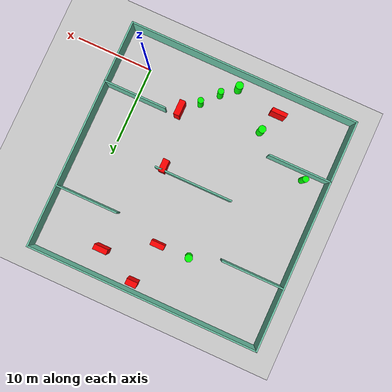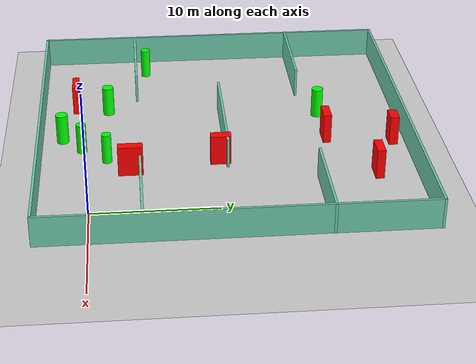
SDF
<sdf version="1.7">
 <world name="default">
  <light name="sun" type="directional">
   <pose>0 0 10 0 -0 0</pose>
   <diffuse>0.8 0.8 0.8 1</diffuse>
   <specular>0.2 0.2 0.2 1</specular>
   <attenuation>
    <range>1000</range>
    <constant>0.9</constant>
    <linear>0.01</linear>
    <quadratic>0.001</quadratic>
   </attenuation>
   <direction>-0.5 0.1 -0.9</direction>
   <spot><inner_angle>0</inner_angle><outer_angle>0</outer_angle><falloff>0</falloff></spot>
  </light>
  <model name="ground_plane">
   <static>1</static>
   <link name="link">
    <collision name="collision">
     <geometry><plane><normal>0 0 1</normal><size>100 100</size></plane></geometry>
     <surface>
      <contact><collide_bitmask>65535</collide_bitmask></contact>
      <friction><ode><mu>100</mu><mu2>50</mu2></ode></friction>
     </surface>
    </collision>
    <visual name="visual">
     <cast_shadows>0</cast_shadows>
     <geometry><plane><normal>0 0 1</normal><size>100 100</size></plane></geometry>
     <material>
      <script><uri>file://media/materials/scripts/gazebo.material</uri><name>Gazebo/Grey</name></script>
     </material>
    </visual>
   </link>
  </model>
  <gravity>0 0 -9.8</gravity>
  <magnetic_field>6e-06 2.3e-05 -4.2e-05</magnetic_field>
  <atmosphere type="adiabatic"/>
  <physics type="ode">
   <max_step_size>0.001</max_step_size>
   <real_time_factor>1</real_time_factor>
   <real_time_update_rate>1000</real_time_update_rate>
  </physics>
  <scene><ambient>0.4 0.4 0.4 1</ambient><background>0.7 0.7 0.7 1</background><shadows>1</shadows></scene>
  <spherical_coordinates>
   <surface_model>EARTH_WGS84</surface_model>
   <latitude_deg>0</latitude_deg>
   <longitude_deg>0</longitude_deg>
   <elevation>0</elevation>
   <heading_deg>0</heading_deg>
  </spherical_coordinates>
  <model name="my_base_walls">
   <link name="Wall_10">
    <collision name="Wall_10_Collision">
     <geometry><box><size>8.2 0.2 2.5</size></box></geometry>
     <pose>0 0 1.25 0 -0 0</pose>
    </collision>
    <visual name="Wall_10_Visual">
     <pose>0 0 1.25 0 -0 0</pose>
     <geometry><box><size>8.2 0.2 2.5</size></box></geometry>
     <material>
      <script><uri>file://media/materials/scripts/gazebo.material</uri><name>Gazebo/Grey</name></script>
      <ambient>0.435294 0.796078 0.67451 1</ambient>
     </material>
     <meta><layer>0</layer></meta>
    </visual>
    <pose>-11 -7 0 0 -0 0</pose>
   </link>
   <link name="Wall_12">
    <collision name="Wall_12_Collision">
     <geometry><box><size>8.2 0.2 2.5</size></box></geometry>
     <pose>0 0 1.25 0 -0 0</pose>
    </collision>
    <visual name="Wall_12_Visual">
     <pose>0 0 1.25 0 -0 0</pose>
     <geometry><box><size>8.2 0.2 2.5</size></box></geometry>
     <material>
      <script><uri>file://media/materials/scripts/gazebo.material</uri><name>Gazebo/Grey</name></script>
      <ambient>0.435294 0.796078 0.67451 1</ambient>
     </material>
     <meta><layer>0</layer></meta>
    </visual>
    <pose>-11 7 0 0 -0 0</pose>
   </link>
   <link name="Wall_14">
    <collision name="Wall_14_Collision">
     <geometry><box><size>8.2 0.2 2.5</size></box></geometry>
     <pose>0 0 1.25 0 -0 0</pose>
    </collision>
    <visual name="Wall_14_Visual">
     <pose>0 0 1.25 0 -0 0</pose>
     <geometry><box><size>8.2 0.2 2.5</size></box></geometry>
     <material>
      <script><uri>file://media/materials/scripts/gazebo.material</uri><name>Gazebo/Grey</name></script>
      <ambient>0.435294 0.796078 0.67451 1</ambient>
     </material>
     <meta><layer>0</layer></meta>
    </visual>
    <pose>11 7 0 0 -0 3.14159</pose>
   </link>
   <link name="Wall_16">
    <collision name="Wall_16_Collision">
     <geometry><box><size>10.2 0.2 2.5</size></box></geometry>
     <pose>0 0 1.25 0 -0 0</pose>
    </collision>
    <visual name="Wall_16_Visual">
     <pose>0 0 1.25 0 -0 0</pose>
     <geometry><box><size>10.2 0.2 2.5</size></box></geometry>
     <material>
      <script><uri>file://media/materials/scripts/gazebo.material</uri><name>Gazebo/Grey</name></script>
      <ambient>0.435294 0.796078 0.67451 1</ambient>
     </material>
     <meta><layer>0</layer></meta>
    </visual>
    <pose>0 0 0 0 -0 3.14159</pose>
   </link>
   <link name="Wall_2">
    <collision name="Wall_2_Collision">
     <geometry><box><size>30.2 0.2 2.5</size></box></geometry>
     <pose>0 0 1.25 0 -0 0</pose>
    </collision>
    <visual name="Wall_2_Visual">
     <pose>0 0 1.25 0 -0 0</pose>
     <geometry><box><size>30.2 0.2 2.5</size></box></geometry>
     <material>
      <script><uri>file://media/materials/scripts/gazebo.material</uri><name>Gazebo/Grey</name></script>
      <ambient>0.435294 0.796078 0.67451 1</ambient>
     </material>
     <meta><layer>0</layer></meta>
    </visual>
    <pose>0 -15 0 0 -0 3.14159</pose>
   </link>
   <link name="Wall_3">
    <collision name="Wall_3_Collision">
     <geometry><box><size>30.2 0.2 2.5</size></box></geometry>
     <pose>0 0 1.25 0 -0 0</pose>
    </collision>
    <visual name="Wall_3_Visual">
     <pose>0 0 1.25 0 -0 0</pose>
     <geometry><box><size>30.2 0.2 2.5</size></box></geometry>
     <material>
      <script><uri>file://media/materials/scripts/gazebo.material</uri><name>Gazebo/Grey</name></script>
      <ambient>0.435294 0.796078 0.67451 1</ambient>
     </material>
     <meta><layer>0</layer></meta>
    </visual>
    <pose>-15 0 0 0 -0 1.5708</pose>
   </link>
   <link name="Wall_4">
    <collision name="Wall_4_Collision">
     <geometry><box><size>30.2 0.2 2.5</size></box></geometry>
     <pose>0 0 1.25 0 -0 0</pose>
    </collision>
    <visual name="Wall_4_Visual">
     <pose>0 0 1.25 0 -0 0</pose>
     <geometry><box><size>30.2 0.2 2.5</size></box></geometry>
     <material>
      <script><uri>file://media/materials/scripts/gazebo.material</uri><name>Gazebo/Grey</name></script>
      <ambient>0.435294 0.796078 0.67451 1</ambient>
     </material>
     <meta><layer>0</layer></meta>
    </visual>
    <pose>0 15 0 0 -0 0</pose>
   </link>
   <link name="Wall_6">
    <collision name="Wall_6_Collision">
     <geometry><box><size>30.2 0.2 2.5</size></box></geometry>
     <pose>0 0 1.25 0 -0 0</pose>
    </collision>
    <visual name="Wall_6_Visual">
     <pose>0 0 1.25 0 -0 0</pose>
     <geometry><box><size>30.2 0.2 2.5</size></box></geometry>
     <material>
      <script><uri>file://media/materials/scripts/gazebo.material</uri><name>Gazebo/Grey</name></script>
      <ambient>0.435294 0.796078 0.67451 1</ambient>
     </material>
     <meta><layer>0</layer></meta>
    </visual>
    <pose>15 0 0 0 -0 1.5708</pose>
   </link>
   <link name="Wall_8">
    <collision name="Wall_8_Collision">
     <geometry><box><size>8.2 0.2 2.5</size></box></geometry>
     <pose>0 0 1.25 0 -0 0</pose>
    </collision>
    <visual name="Wall_8_Visual">
     <pose>0 0 1.25 0 -0 0</pose>
     <geometry><box><size>8.2 0.2 2.5</size></box></geometry>
     <material>
      <script><uri>file://media/materials/scripts/gazebo.material</uri><name>Gazebo/Grey</name></script>
      <ambient>0.435294 0.796078 0.67451 1</ambient>
     </material>
     <meta><layer>0</layer></meta>
    </visual>
    <pose>11 -7 0 0 -0 3.14159</pose>
   </link>
   <static>1</static>
   <pose>-11 11 0 0 -0 0</pose>
  </model>
  <model name="cylinder1">
   <static>1</static>
   <link name="link">
    <inertial>
     <mass>1</mass>
     <inertia><ixx>0.5</ixx><ixy>0</ixy><ixz>0</ixz><iyy>0.5</iyy><iyz>0</iyz><izz>1</izz></inertia>
    </inertial>
    <collision name="collision">
     <geometry><cylinder><radius>0.4920406954610144</radius><length>2.5</length></cylinder></geometry>
    </collision>
    <visual name="visual">
     <geometry><cylinder><radius>0.4920406954610144</radius><length>2.5</length></cylinder></geometry>
     <material>
      <ambient>0 1 0 1</ambient>
      <diffuse>0 1 0 1</diffuse>
      <specular>0.1 0.1 0.1 1</specular>
      <emissive>0 0 0 0</emissive>
     </material>
    </visual>
   </link>
   <pose>-11.183086590891907 -2.2486082366584292 1.25 0 0 0</pose>
  </model>
  <model name="cylinder2">
   <static>1</static>
   <link name="link">
    <inertial>
     <mass>1</mass>
     <inertia><ixx>0.5</ixx><ixy>0</ixy><ixz>0</ixz><iyy>0.5</iyy><iyz>0</iyz><izz>1</izz></inertia>
    </inertial>
    <collision name="collision">
     <geometry><cylinder><radius>0.47694194335690765</radius><length>2.5</length></cylinder></geometry>
    </collision>
    <visual name="visual">
     <geometry><cylinder><radius>0.47694194335690765</radius><length>2.5</length></cylinder></geometry>
     <material>
      <ambient>0 1 0 1</ambient>
      <diffuse>0 1 0 1</diffuse>
      <specular>0.1 0.1 0.1 1</specular>
      <emissive>0 0 0 0</emissive>
     </material>
    </visual>
   </link>
   <pose>-15.87401078196036 1.5246909770335932 1.25 0 0 0</pose>
  </model>
  <model name="cylinder3">
   <static>1</static>
   <link name="link">
    <inertial>
     <mass>1</mass>
     <inertia><ixx>0.5</ixx><ixy>0</ixy><ixz>0</ixz><iyy>0.5</iyy><iyz>0</iyz><izz>1</izz></inertia>
    </inertial>
    <collision name="collision">
     <geometry><cylinder><radius>0.387052619647152</radius><length>2.5</length></cylinder></geometry>
    </collision>
    <visual name="visual">
     <geometry><cylinder><radius>0.387052619647152</radius><length>2.5</length></cylinder></geometry>
     <material>
      <ambient>0 1 0 1</ambient>
      <diffuse>0 1 0 1</diffuse>
      <specular>0.1 0.1 0.1 1</specular>
      <emissive>0 0 0 0</emissive>
     </material>
    </visual>
   </link>
   <pose>-7.62712355215025 1.3861800543608611 1.25 0 0 0</pose>
  </model>
  <model name="cylinder4">
   <static>1</static>
   <link name="link">
    <inertial>
     <mass>1</mass>
     <inertia><ixx>0.5</ixx><ixy>0</ixy><ixz>0</ixz><iyy>0.5</iyy><iyz>0</iyz><izz>1</izz></inertia>
    </inertial>
    <collision name="collision">
     <geometry><cylinder><radius>0.3979564650685785</radius><length>2.5</length></cylinder></geometry>
    </collision>
    <visual name="visual">
     <geometry><cylinder><radius>0.3979564650685785</radius><length>2.5</length></cylinder></geometry>
     <material>
      <ambient>0 1 0 1</ambient>
      <diffuse>0 1 0 1</diffuse>
      <specular>0.1 0.1 0.1 1</specular>
      <emissive>0 0 0 0</emissive>
     </material>
    </visual>
   </link>
   <pose>-9.410213483015708 -0.656526404467173 1.25 0 0 0</pose>
  </model>
  <model name="cylinder5">
   <static>1</static>
   <link name="link">
    <inertial>
     <mass>1</mass>
     <inertia><ixx>0.5</ixx><ixy>0</ixy><ixz>0</ixz><iyy>0.5</iyy><iyz>0</iyz><izz>1</izz></inertia>
    </inertial>
    <collision name="collision">
     <geometry><cylinder><radius>0.4792681672013941</radius><length>2.5</length></cylinder></geometry>
    </collision>
    <visual name="visual">
     <geometry><cylinder><radius>0.4792681672013941</radius><length>2.5</length></cylinder></geometry>
     <material>
      <ambient>0 1 0 1</ambient>
      <diffuse>0 1 0 1</diffuse>
      <specular>0.1 0.1 0.1 1</specular>
      <emissive>0 0 0 0</emissive>
     </material>
    </visual>
   </link>
   <pose>-14.18358497247771 19.336786159494388 1.25 0 0 0</pose>
  </model>
  <model name="cylinder6">
   <static>1</static>
   <link name="link">
    <inertial>
     <mass>1</mass>
     <inertia><ixx>0.5</ixx><ixy>0</ixy><ixz>0</ixz><iyy>0.5</iyy><iyz>0</iyz><izz>1</izz></inertia>
    </inertial>
    <collision name="collision">
     <geometry><cylinder><radius>0.3995847922604486</radius><length>2.5</length></cylinder></geometry>
    </collision>
    <visual name="visual">
     <geometry><cylinder><radius>0.3995847922604486</radius><length>2.5</length></cylinder></geometry>
     <material>
      <ambient>0 1 0 1</ambient>
      <diffuse>0 1 0 1</diffuse>
      <specular>0.1 0.1 0.1 1</specular>
      <emissive>0 0 0 0</emissive>
     </material>
    </visual>
   </link>
   <pose>-23.09886260713731 4.904523422932268 1.25 0 0 0</pose>
  </model>
  <model name="box1">
   <static>1</static>
   <link name="link">
    <inertial>
     <mass>1</mass>
     <inertia><ixx>0.083</ixx><ixy>0</ixy><ixz>0</ixz><iyy>0.083</iyy><iyz>0</iyz><izz>0.083</izz></inertia>
    </inertial>
    <collision name="collision">
     <geometry><box><size>1.9854920224896344 0.5326430884933198 2.5</size></box></geometry>
    </collision>
    <visual name="visual">
     <geometry><box><size>1.9854920224896344 0.5326430884933198 2.5</size></box></geometry>
     <material>
      <ambient>1 0 0 1</ambient>
      <diffuse>1 0 0 1</diffuse>
      <specular>0.1 0.1 0.1 1</specular>
      <emissive>0 0 0 0</emissive>
     </material>
    </visual>
    <sensor name="my_contact" type="contact">
     <contact><collision>box_collision</collision><topic>__default_topic__</topic></contact>
    </sensor>
   </link>
   <pose>-16.96495903807293 -1.2287634532486242 1.25 0 0 0</pose>
  </model>
  <model name="box2">
   <static>1</static>
   <link name="link">
    <inertial>
     <mass>1</mass>
     <inertia><ixx>0.083</ixx><ixy>0</ixy><ixz>0</ixz><iyy>0.083</iyy><iyz>0</iyz><izz>0.083</izz></inertia>
    </inertial>
    <collision name="collision">
     <geometry><box><size>1.7731942416488664 0.6444163772880132 2.5</size></box></geometry>
    </collision>
    <visual name="visual">
     <geometry><box><size>1.7731942416488664 0.6444163772880132 2.5</size></box></geometry>
     <material>
      <ambient>1 0 0 1</ambient>
      <diffuse>1 0 0 1</diffuse>
      <specular>0.1 0.1 0.1 1</specular>
      <emissive>0 0 0 0</emissive>
     </material>
    </visual>
    <sensor name="my_contact" type="contact">
     <contact><collision>box_collision</collision><topic>__default_topic__</topic></contact>
    </sensor>
   </link>
   <pose>-10.125931755000188 19.47184659292196 1.25 0 0 0</pose>
  </model>
  <model name="box3">
   <static>1</static>
   <link name="link">
    <inertial>
     <mass>1</mass>
     <inertia><ixx>0.083</ixx><ixy>0</ixy><ixz>0</ixz><iyy>0.083</iyy><iyz>0</iyz><izz>0.083</izz></inertia>
    </inertial>
    <collision name="collision">
     <geometry><box><size>1.7899995891450935 0.6724921272629653 2.5</size></box></geometry>
    </collision>
    <visual name="visual">
     <geometry><box><size>1.7899995891450935 0.6724921272629653 2.5</size></box></geometry>
     <material>
      <ambient>1 0 0 1</ambient>
      <diffuse>1 0 0 1</diffuse>
      <specular>0.1 0.1 0.1 1</specular>
      <emissive>0 0 0 0</emissive>
     </material>
    </visual>
    <sensor name="my_contact" type="contact">
     <contact><collision>box_collision</collision><topic>__default_topic__</topic></contact>
    </sensor>
   </link>
   <pose>-4.11092397869974 22.74191658679247 1.25 0 0 0</pose>
  </model>
  <model name="box4">
   <static>1</static>
   <link name="link">
    <inertial>
     <mass>1</mass>
     <inertia><ixx>0.083</ixx><ixy>0</ixy><ixz>0</ixz><iyy>0.083</iyy><iyz>0</iyz><izz>0.083</izz></inertia>
    </inertial>
    <collision name="collision">
     <geometry><box><size>1.4152405350728472 0.724348668824783 2.5</size></box></geometry>
    </collision>
    <visual name="visual">
     <geometry><box><size>1.4152405350728472 0.724348668824783 2.5</size></box></geometry>
     <material>
      <ambient>1 0 0 1</ambient>
      <diffuse>1 0 0 1</diffuse>
      <specular>0.1 0.1 0.1 1</specular>
      <emissive>0 0 0 0</emissive>
     </material>
    </visual>
    <sensor name="my_contact" type="contact">
     <contact><collision>box_collision</collision><topic>__default_topic__</topic></contact>
    </sensor>
   </link>
   <pose>-9.174044939435856 24.872678307105293 1.25 0 0 0</pose>
  </model>
  <model name="box5">
   <static>1</static>
   <link name="link">
    <inertial>
     <mass>1</mass>
     <inertia><ixx>0.083</ixx><ixy>0</ixy><ixz>0</ixz><iyy>0.083</iyy><iyz>0</iyz><izz>0.083</izz></inertia>
    </inertial>
    <collision name="collision">
     <geometry><box><size>0.7667940708274705 1.9786939030263715 2.5</size></box></geometry>
    </collision>
    <visual name="visual">
     <geometry><box><size>0.7667940708274705 1.9786939030263715 2.5</size></box></geometry>
     <material>
      <ambient>1 0 0 1</ambient>
      <diffuse>1 0 0 1</diffuse>
      <specular>0.1 0.1 0.1 1</specular>
      <emissive>0 0 0 0</emissive>
     </material>
    </visual>
    <sensor name="my_contact" type="contact">
     <contact><collision>box_collision</collision><topic>__default_topic__</topic></contact>
    </sensor>
   </link>
   <pose>-5.645645783720118 3.253701968043605 1.25 0 0 0</pose>
  </model>
  <model name="box6">
   <static>1</static>
   <link name="link">
    <inertial>
     <mass>1</mass>
     <inertia><ixx>0.083</ixx><ixy>0</ixy><ixz>0</ixz><iyy>0.083</iyy><iyz>0</iyz><izz>0.083</izz></inertia>
    </inertial>
    <collision name="collision">
     <geometry><box><size>0.7933168280488756 1.6359533734347274 2.5</size></box></geometry>
    </collision>
    <visual name="visual">
     <geometry><box><size>0.7933168280488756 1.6359533734347274 2.5</size></box></geometry>
     <material>
      <ambient>1 0 0 1</ambient>
      <diffuse>1 0 0 1</diffuse>
      <specular>0.1 0.1 0.1 1</specular>
      <emissive>0 0 0 0</emissive>
     </material>
    </visual>
    <sensor name="my_contact" type="contact">
     <contact><collision>box_collision</collision><topic>__default_topic__</topic></contact>
    </sensor>
   </link>
   <pose>-6.831846426605587 10.471874794039856 1.25 0 0 0</pose>
  </model>
 </world>
</sdf>
